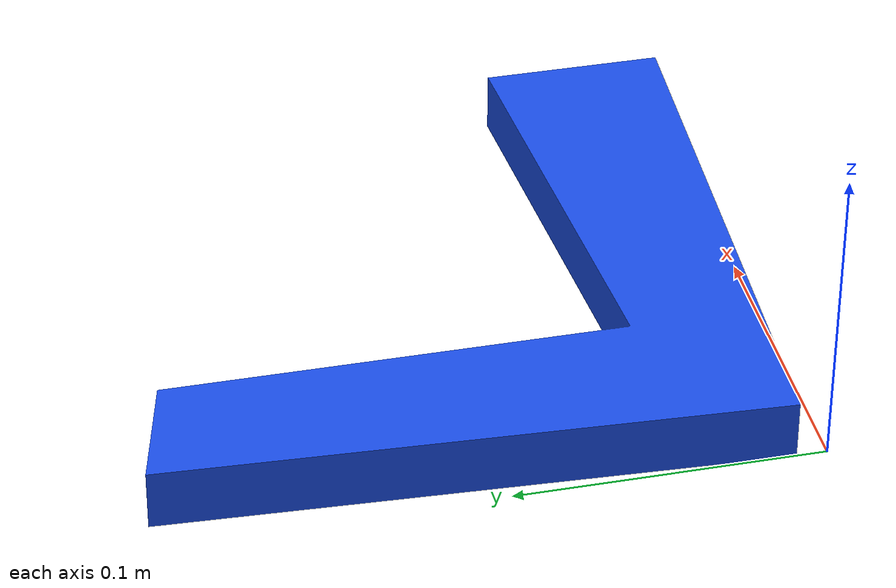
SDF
<sdf version="1.7">
  <model name="my_piece">
    <link name="my_piece_link">
      <inertial>
        <mass>0.082750</mass>
        <inertia>
          <ixx>3.047958e-04</ixx>
          <iyy>2.765229e-04</iyy>
          <izz>5.799396e-04</izz>
          <ixy>0</ixy>
          <ixz>0</ixz>
          <iyz>0</iyz>
        </inertia>
      </inertial>
      <visual name="visual">
        <geometry>
          <mesh>
            <uri>my_piece.obj</uri>
            <scale>1 1 2</scale>
          </mesh>
        </geometry>
                <material>
                    <ambient>0.050 0.150 0.450 1.000</ambient>
                    <diffuse>0.100 0.300 0.900 1.000</diffuse>
                    <specular>0.2 0.2 0.2 1</specular>
                    <emissive>0 0 0 1</emissive>
                </material>
      </visual>
      <collision name="collision">
        <geometry>
          <mesh>
            <uri>my_piece.obj</uri>
            <scale>1 1 2</scale>
          </mesh>
        </geometry>
        <surface>
          <friction>
            <ode>
              <mu>5.0</mu>
              <mu2>5.0</mu2>
            </ode>
          </friction>
        </surface>
      </collision>
    </link>
  </model>
</sdf>
